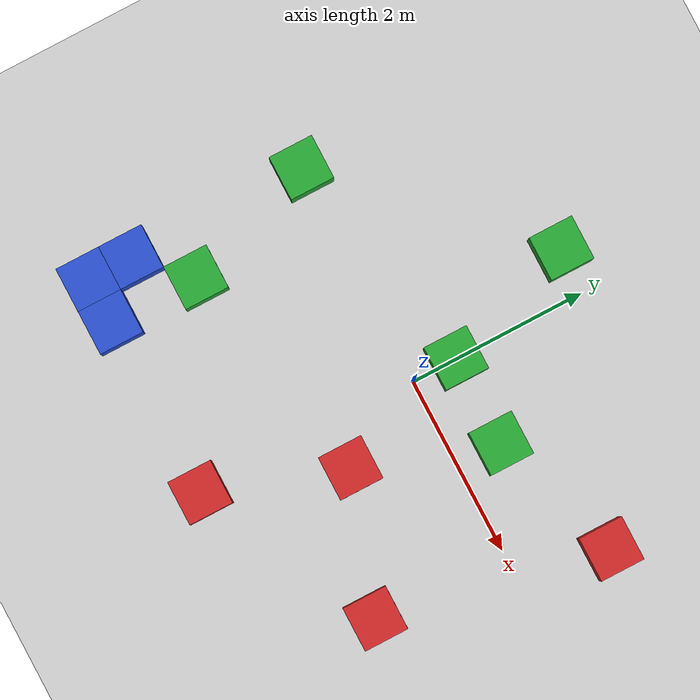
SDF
<?xml version="1.0" ?>
<sdf version="1.6">
  <world name="guided_maze">
    <physics name="1ms" type="ignored">
      <max_step_size>0.001</max_step_size>
      <real_time_factor>1.0</real_time_factor>
    </physics>
    <plugin filename="gz-sim-physics-system" name="gz::sim::systems::Physics"/>
    <plugin filename="gz-sim-user-commands-system" name="gz::sim::systems::UserCommands"/>
    <plugin filename="gz-sim-scene-broadcaster-system" name="gz::sim::systems::SceneBroadcaster"/>
    <plugin filename="gz-sim-sensors-system" name="gz::sim::systems::Sensors">
      <render_engine>ogre2</render_engine>
    </plugin>
    <plugin filename="gz-sim-contact-system" name="gz::sim::systems::Contact"/>
    <plugin filename="gz-sim-imu-system" name="gz::sim::systems::Imu"/>
    <gravity>0 0 -9.81</gravity>
    <magnetic_field>5.5645e-06 2.28758e-05 -4.23884e-05</magnetic_field>
    <include>
      <uri>model://models/sun</uri>
    </include>
    <include>
      <uri>model://models/ground_plane</uri>
    </include>
    <model name="red_boxes">
      <static>true</static>
      <link name="red_box_1">
        <pose>2.5 1.0 0.2 0 0 0</pose>
        <visual name="red_box_1_visual">
          <geometry>
            <box>
              <size>0.5 0.5 0.4</size>
            </box>
          </geometry>
          <material>
            <script>
              <uri>file://media/materials/scripts/gazebo.material</uri>
              <name>Gazebo/Red</name>
            </script>
          </material>
        </visual>
        <collision name="red_box_1_collision">
          <geometry>
            <box>
              <size>0.5 0.5 0.4</size>
            </box>
          </geometry>
        </collision>
      </link>
      <link name="red_box_2">
        <pose>2.0 -1.5 0.2 0 0 0</pose>
        <visual name="red_box_2_visual">
          <geometry>
            <box>
              <size>0.5 0.5 0.4</size>
            </box>
          </geometry>
          <material>
            <script>
              <uri>file://media/materials/scripts/gazebo.material</uri>
              <name>Gazebo/Red</name>
            </script>
          </material>
        </visual>
        <collision name="red_box_2_collision">
          <geometry>
            <box>
              <size>0.5 0.5 0.4</size>
            </box>
          </geometry>
        </collision>
      </link>
      <link name="red_box_3">
        <pose>0.5 -1.0 0.2 0 0 0</pose>
        <visual name="red_box_3_visual">
          <geometry>
            <box>
              <size>0.5 0.5 0.4</size>
            </box>
          </geometry>
          <material>
            <script>
              <uri>file://media/materials/scripts/gazebo.material</uri>
              <name>Gazebo/Red</name>
            </script>
          </material>
        </visual>
        <collision name="red_box_3_collision">
          <geometry>
            <box>
              <size>0.5 0.5 0.4</size>
            </box>
          </geometry>
        </collision>
      </link>
      <link name="red_box_4">
        <pose>0.5 -1.0 0.2 0 0 0</pose>
        <visual name="red_box_4_visual">
          <geometry>
            <box>
              <size>0.5 0.5 0.4</size>
            </box>
          </geometry>
          <material>
            <script>
              <uri>file://media/materials/scripts/gazebo.material</uri>
              <name>Gazebo/Red</name>
            </script>
          </material>
        </visual>
        <collision name="red_box_4_collision">
          <geometry>
            <box>
              <size>0.5 0.5 0.4</size>
            </box>
          </geometry>
        </collision>
      </link>
      <link name="red_box_5">
        <pose>0.0 -2.5 0.2 0 0 0</pose>
        <visual name="red_box_5_visual">
          <geometry>
            <box>
              <size>0.5 0.5 0.4</size>
            </box>
          </geometry>
          <material>
            <script>
              <uri>file://media/materials/scripts/gazebo.material</uri>
              <name>Gazebo/Red</name>
            </script>
          </material>
        </visual>
        <collision name="red_box_5_collision">
          <geometry>
            <box>
              <size>0.5 0.5 0.4</size>
            </box>
          </geometry>
        </collision>
      </link>
    </model>
    <model name="green_boxes">
      <static>true</static>
      <link name="green_box_1">
        <pose>-0.5 2.0 0.2 0 0 0</pose>
        <visual name="green_box_1_visual">
          <geometry>
            <box>
              <size>0.5 0.5 0.4</size>
            </box>
          </geometry>
          <material>
            <script>
              <uri>file://media/materials/scripts/gazebo.material</uri>
              <name>Gazebo/Green</name>
            </script>
          </material>
        </visual>
        <collision name="green_box_1_collision">
          <geometry>
            <box>
              <size>0.5 0.5 0.4</size>
            </box>
          </geometry>
        </collision>
      </link>
      <link name="green_box_2">
        <pose>0.0 0.5 0.2 0 0 0</pose>
        <visual name="green_box_2_visual">
          <geometry>
            <box>
              <size>0.5 0.5 0.4</size>
            </box>
          </geometry>
          <material>
            <script>
              <uri>file://media/materials/scripts/gazebo.material</uri>
              <name>Gazebo/Green</name>
            </script>
          </material>
        </visual>
        <collision name="green_box_2_collision">
          <geometry>
            <box>
              <size>0.5 0.5 0.4</size>
            </box>
          </geometry>
        </collision>
      </link>
      <link name="green_box_3">
        <pose>1.0 0.5 0.2 0 0 0</pose>
        <visual name="green_box_3_visual">
          <geometry>
            <box>
              <size>0.5 0.5 0.4</size>
            </box>
          </geometry>
          <material>
            <script>
              <uri>file://media/materials/scripts/gazebo.material</uri>
              <name>Gazebo/Green</name>
            </script>
          </material>
        </visual>
        <collision name="green_box_3_collision">
          <geometry>
            <box>
              <size>0.5 0.5 0.4</size>
            </box>
          </geometry>
        </collision>
      </link>
      <link name="green_box_4">
        <pose>-2.5 0.0 0.2 0 0 0</pose>
        <visual name="green_box_4_visual">
          <geometry>
            <box>
              <size>0.5 0.5 0.4</size>
            </box>
          </geometry>
          <material>
            <script>
              <uri>file://media/materials/scripts/gazebo.material</uri>
              <name>Gazebo/Green</name>
            </script>
          </material>
        </visual>
        <collision name="green_box_4_collision">
          <geometry>
            <box>
              <size>0.5 0.5 0.4</size>
            </box>
          </geometry>
        </collision>
      </link>
      <link name="green_box_5">
        <pose>-2.0 -1.5 0.2 0 0 0</pose>
        <visual name="green_box_5_visual">
          <geometry>
            <box>
              <size>0.5 0.5 0.4</size>
            </box>
          </geometry>
          <material>
            <script>
              <uri>file://media/materials/scripts/gazebo.material</uri>
              <name>Gazebo/Green</name>
            </script>
          </material>
        </visual>
        <collision name="green_box_5_collision">
          <geometry>
            <box>
              <size>0.5 0.5 0.4</size>
            </box>
          </geometry>
        </collision>
      </link>
    </model>
    <model name="blue_boxes">
      <static>true</static>
      <link name="blue_box_1">
        <pose>-2.5 -2.0 0.2 0 0 0</pose>
        <visual name="blue_box_1_visual">
          <geometry>
            <box>
              <size>0.5 0.5 0.4</size>
            </box>
          </geometry>
          <material>
            <script>
              <uri>file://media/materials/scripts/gazebo.material</uri>
              <name>Gazebo/Blue</name>
            </script>
          </material>
        </visual>
        <collision name="blue_box_1_collision">
          <geometry>
            <box>
              <size>0.5 0.5 0.4</size>
            </box>
          </geometry>
        </collision>
      </link>
      <link name="blue_box_2">
        <pose>-2.0 -2.5 0.2 0 0 0</pose>
        <visual name="blue_box_2_visual">
          <geometry>
            <box>
              <size>0.5 0.5 0.4</size>
            </box>
          </geometry>
          <material>
            <script>
              <uri>file://media/materials/scripts/gazebo.material</uri>
              <name>Gazebo/Blue</name>
            </script>
          </material>
        </visual>
        <collision name="blue_box_2_collision">
          <geometry>
            <box>
              <size>0.5 0.5 0.4</size>
            </box>
          </geometry>
        </collision>
      </link>
      <link name="blue_box_3">
        <pose>-2.5 -2.5 0.2 0 0 0</pose>
        <visual name="blue_box_3_visual">
          <geometry>
            <box>
              <size>0.5 0.5 0.4</size>
            </box>
          </geometry>
          <material>
            <script>
              <uri>file://media/materials/scripts/gazebo.material</uri>
              <name>Gazebo/Blue</name>
            </script>
          </material>
        </visual>
        <collision name="blue_box_3_collision">
          <geometry>
            <box>
              <size>0.5 0.5 0.4</size>
            </box>
          </geometry>
        </collision>
      </link>
    </model>
  </world>
</sdf>
